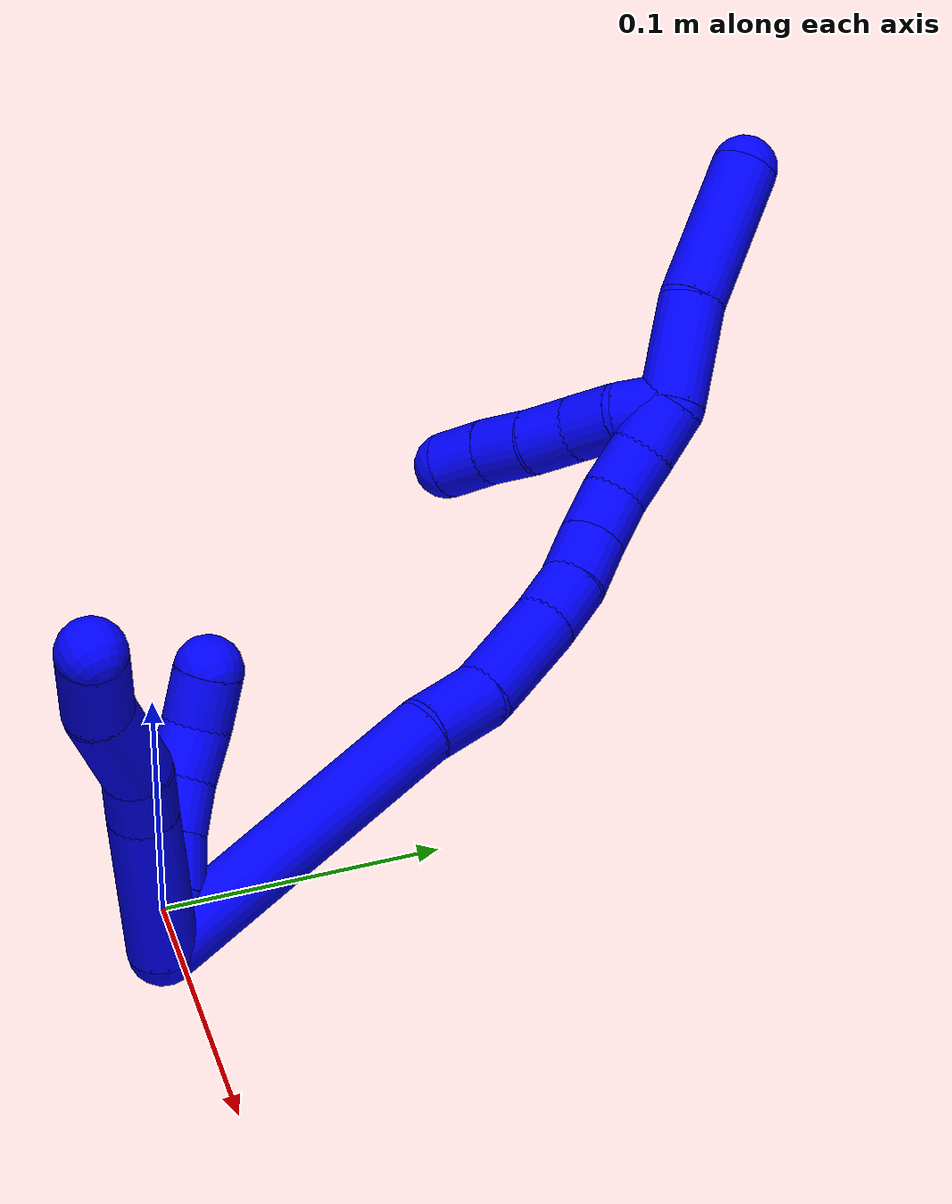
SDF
<sdf version="1.7">
 <world name="default">
  <model name="1">
   <static>0</static>
   <link name="1">
    <collision name="collision-cylinder-e_1_2_8">
     <pose>-0.010558 -0.025011 -0.01399 2.0808 -0.352967 -0.590428</pose>
     <geometry><cylinder><radius>0.0125</radius><length>0.061082</length></cylinder></geometry>
     <surface>
      <friction><ode><mu>1.16</mu><mu2>1.16</mu2><slip1>0</slip1><slip2>0</slip2></ode></friction>
      <contact><ode><kp>1e+06</kp><kd>1</kd><max_vel>0</max_vel><min_depth>0.001</min_depth></ode></contact>
     </surface>
    </collision>
    <visual name="visual-cylinder-e_1_2_8">
     <pose>-0.010558 -0.025011 -0.01399 2.0808 -0.352967 -0.590428</pose>
     <geometry><cylinder><radius>0.0125</radius><length>0.061082</length></cylinder></geometry>
     <material><ambient>0 0 1 1</ambient></material>
    </visual>
    <collision name="collision-cylinder-e_2_8_9">
     <pose>-0.024606 -0.058751 -0.031688 1.97246 -0.352715 -0.526142</pose>
     <geometry><cylinder><radius>0.0125</radius><length>0.020211</length></cylinder></geometry>
     <surface>
      <friction><ode><mu>1.16</mu><mu2>1.16</mu2><slip1>0</slip1><slip2>0</slip2></ode></friction>
      <contact><ode><kp>1e+06</kp><kd>1</kd><max_vel>0</max_vel><min_depth>0.001</min_depth></ode></contact>
     </surface>
    </collision>
    <visual name="visual-cylinder-e_2_8_9">
     <pose>-0.024606 -0.058751 -0.031688 1.97246 -0.352715 -0.526142</pose>
     <geometry><cylinder><radius>0.0125</radius><length>0.020211</length></cylinder></geometry>
     <material><ambient>0 0 1 1</ambient></material>
    </visual>
    <collision name="collision-cylinder-e_3_9_10">
     <pose>-0.028955 -0.085187 -0.041303 1.8928 -0.045964 -0.063777</pose>
     <geometry><cylinder><radius>0.0125</radius><length>0.037373</length></cylinder></geometry>
     <surface>
      <friction><ode><mu>1.16</mu><mu2>1.16</mu2><slip1>0</slip1><slip2>0</slip2></ode></friction>
      <contact><ode><kp>1e+06</kp><kd>1</kd><max_vel>0</max_vel><min_depth>0.001</min_depth></ode></contact>
     </surface>
    </collision>
    <visual name="visual-cylinder-e_3_9_10">
     <pose>-0.028955 -0.085187 -0.041303 1.8928 -0.045964 -0.063777</pose>
     <geometry><cylinder><radius>0.0125</radius><length>0.037373</length></cylinder></geometry>
     <material><ambient>0 0 1 1</ambient></material>
    </visual>
    <collision name="collision-cylinder-e_4_10_6">
     <pose>-0.034738 -0.117397 -0.050512 1.7946 -0.319737 -0.398772</pose>
     <geometry><cylinder><radius>0.0125</radius><length>0.031334</length></cylinder></geometry>
     <surface>
      <friction><ode><mu>1.16</mu><mu2>1.16</mu2><slip1>0</slip1><slip2>0</slip2></ode></friction>
      <contact><ode><kp>1e+06</kp><kd>1</kd><max_vel>0</max_vel><min_depth>0.001</min_depth></ode></contact>
     </surface>
    </collision>
    <visual name="visual-cylinder-e_4_10_6">
     <pose>-0.034738 -0.117397 -0.050512 1.7946 -0.319737 -0.398772</pose>
     <geometry><cylinder><radius>0.0125</radius><length>0.031334</length></cylinder></geometry>
     <material><ambient>0 0 1 1</ambient></material>
    </visual>
    <collision name="collision-cylinder-e_1_2_11">
     <pose>-0.005594 0.000137 -0.008288 -3.12511 -0.593708 3.08773</pose>
     <geometry><cylinder><radius>0.0125</radius><length>0.02</length></cylinder></geometry>
     <surface>
      <friction><ode><mu>1.16</mu><mu2>1.16</mu2><slip1>0</slip1><slip2>0</slip2></ode></friction>
      <contact><ode><kp>1e+06</kp><kd>1</kd><max_vel>0</max_vel><min_depth>0.001</min_depth></ode></contact>
     </surface>
    </collision>
    <visual name="visual-cylinder-e_1_2_11">
     <pose>-0.005594 0.000137 -0.008288 -3.12511 -0.593708 3.08773</pose>
     <geometry><cylinder><radius>0.0125</radius><length>0.02</length></cylinder></geometry>
     <material><ambient>0 0 1 1</ambient></material>
    </visual>
    <collision name="collision-cylinder-e_2_11_12">
     <pose>-0.016034 -0.00071 -0.025268 3.02895 -0.505769 -2.71196</pose>
     <geometry><cylinder><radius>0.0125</radius><length>0.02</length></cylinder></geometry>
     <surface>
      <friction><ode><mu>1.16</mu><mu2>1.16</mu2><slip1>0</slip1><slip2>0</slip2></ode></friction>
      <contact><ode><kp>1e+06</kp><kd>1</kd><max_vel>0</max_vel><min_depth>0.001</min_depth></ode></contact>
     </surface>
    </collision>
    <visual name="visual-cylinder-e_2_11_12">
     <pose>-0.016034 -0.00071 -0.025268 3.02895 -0.505769 -2.71196</pose>
     <geometry><cylinder><radius>0.0125</radius><length>0.02</length></cylinder></geometry>
     <material><ambient>0 0 1 1</ambient></material>
    </visual>
    <collision name="collision-cylinder-e_3_12_13">
     <pose>-0.026916 -0.002003 -0.041926 3.10282 -0.648195 -3.02628</pose>
     <geometry><cylinder><radius>0.0125</radius><length>0.02</length></cylinder></geometry>
     <surface>
      <friction><ode><mu>1.16</mu><mu2>1.16</mu2><slip1>0</slip1><slip2>0</slip2></ode></friction>
      <contact><ode><kp>1e+06</kp><kd>1</kd><max_vel>0</max_vel><min_depth>0.001</min_depth></ode></contact>
     </surface>
    </collision>
    <visual name="visual-cylinder-e_3_12_13">
     <pose>-0.026916 -0.002003 -0.041926 3.10282 -0.648195 -3.02628</pose>
     <geometry><cylinder><radius>0.0125</radius><length>0.02</length></cylinder></geometry>
     <material><ambient>0 0 1 1</ambient></material>
    </visual>
    <collision name="collision-cylinder-e_4_13_14">
     <pose>-0.040135 -0.00409 -0.05662 2.88318 -0.801165 -2.54619</pose>
     <geometry><cylinder><radius>0.0125</radius><length>0.02</length></cylinder></geometry>
     <surface>
      <friction><ode><mu>1.16</mu><mu2>1.16</mu2><slip1>0</slip1><slip2>0</slip2></ode></friction>
      <contact><ode><kp>1e+06</kp><kd>1</kd><max_vel>0</max_vel><min_depth>0.001</min_depth></ode></contact>
     </surface>
    </collision>
    <visual name="visual-cylinder-e_4_13_14">
     <pose>-0.040135 -0.00409 -0.05662 2.88318 -0.801165 -2.54619</pose>
     <geometry><cylinder><radius>0.0125</radius><length>0.02</length></cylinder></geometry>
     <material><ambient>0 0 1 1</ambient></material>
    </visual>
    <collision name="collision-cylinder-e_5_14_5">
     <pose>-0.053954 -0.010656 -0.069094 2.44695 -0.72576 -1.61851</pose>
     <geometry><cylinder><radius>0.0125</radius><length>0.02</length></cylinder></geometry>
     <surface>
      <friction><ode><mu>1.16</mu><mu2>1.16</mu2><slip1>0</slip1><slip2>0</slip2></ode></friction>
      <contact><ode><kp>1e+06</kp><kd>1</kd><max_vel>0</max_vel><min_depth>0.001</min_depth></ode></contact>
     </surface>
    </collision>
    <visual name="visual-cylinder-e_5_14_5">
     <pose>-0.053954 -0.010656 -0.069094 2.44695 -0.72576 -1.61851</pose>
     <geometry><cylinder><radius>0.0125</radius><length>0.02</length></cylinder></geometry>
     <material><ambient>0 0 1 1</ambient></material>
    </visual>
    <collision name="collision-cylinder-e_1_2_15">
     <pose>-0.056056 0.024057 -0.019562 -2.25351 -1.06555 1.78385</pose>
     <geometry><cylinder><radius>0.0125</radius><length>0.12812</length></cylinder></geometry>
     <surface>
      <friction><ode><mu>1.16</mu><mu2>1.16</mu2><slip1>0</slip1><slip2>0</slip2></ode></friction>
      <contact><ode><kp>1e+06</kp><kd>1</kd><max_vel>0</max_vel><min_depth>0.001</min_depth></ode></contact>
     </surface>
    </collision>
    <visual name="visual-cylinder-e_1_2_15">
     <pose>-0.056056 0.024057 -0.019562 -2.25351 -1.06555 1.78385</pose>
     <geometry><cylinder><radius>0.0125</radius><length>0.12812</length></cylinder></geometry>
     <material><ambient>0 0 1 1</ambient></material>
    </visual>
    <collision name="collision-cylinder-e_2_15_16">
     <pose>-0.123654 0.055934 -0.042285 -1.95489 -0.939712 1.29073</pose>
     <geometry><cylinder><radius>0.0125</radius><length>0.028592</length></cylinder></geometry>
     <surface>
      <friction><ode><mu>1.16</mu><mu2>1.16</mu2><slip1>0</slip1><slip2>0</slip2></ode></friction>
      <contact><ode><kp>1e+06</kp><kd>1</kd><max_vel>0</max_vel><min_depth>0.001</min_depth></ode></contact>
     </surface>
    </collision>
    <visual name="visual-cylinder-e_2_15_16">
     <pose>-0.123654 0.055934 -0.042285 -1.95489 -0.939712 1.29073</pose>
     <geometry><cylinder><radius>0.0125</radius><length>0.028592</length></cylinder></geometry>
     <material><ambient>0 0 1 1</ambient></material>
    </visual>
    <collision name="collision-cylinder-e_3_16_17">
     <pose>-0.150896 0.073434 -0.054911 -2.34499 -0.859172 1.65568</pose>
     <geometry><cylinder><radius>0.0125</radius><length>0.041462</length></cylinder></geometry>
     <surface>
      <friction><ode><mu>1.16</mu><mu2>1.16</mu2><slip1>0</slip1><slip2>0</slip2></ode></friction>
      <contact><ode><kp>1e+06</kp><kd>1</kd><max_vel>0</max_vel><min_depth>0.001</min_depth></ode></contact>
     </surface>
    </collision>
    <visual name="visual-cylinder-e_3_16_17">
     <pose>-0.150896 0.073434 -0.054911 -2.34499 -0.859172 1.65568</pose>
     <geometry><cylinder><radius>0.0125</radius><length>0.041462</length></cylinder></geometry>
     <material><ambient>0 0 1 1</ambient></material>
    </visual>
    <collision name="collision-cylinder-e_4_17_18">
     <pose>-0.174623 0.087275 -0.069814 -2.4885 -0.864609 1.87524</pose>
     <geometry><cylinder><radius>0.0125</radius><length>0.021101</length></cylinder></geometry>
     <surface>
      <friction><ode><mu>1.16</mu><mu2>1.16</mu2><slip1>0</slip1><slip2>0</slip2></ode></friction>
      <contact><ode><kp>1e+06</kp><kd>1</kd><max_vel>0</max_vel><min_depth>0.001</min_depth></ode></contact>
     </surface>
    </collision>
    <visual name="visual-cylinder-e_4_17_18">
     <pose>-0.174623 0.087275 -0.069814 -2.4885 -0.864609 1.87524</pose>
     <geometry><cylinder><radius>0.0125</radius><length>0.021101</length></cylinder></geometry>
     <material><ambient>0 0 1 1</ambient></material>
    </visual>
    <collision name="collision-cylinder-e_5_18_19">
     <pose>-0.189574 0.094857 -0.082002 -2.67247 -0.740994 2.03858</pose>
     <geometry><cylinder><radius>0.0125</radius><length>0.020516</length></cylinder></geometry>
     <surface>
      <friction><ode><mu>1.16</mu><mu2>1.16</mu2><slip1>0</slip1><slip2>0</slip2></ode></friction>
      <contact><ode><kp>1e+06</kp><kd>1</kd><max_vel>0</max_vel><min_depth>0.001</min_depth></ode></contact>
     </surface>
    </collision>
    <visual name="visual-cylinder-e_5_18_19">
     <pose>-0.189574 0.094857 -0.082002 -2.67247 -0.740994 2.03858</pose>
     <geometry><cylinder><radius>0.0125</radius><length>0.020516</length></cylinder></geometry>
     <material><ambient>0 0 1 1</ambient></material>
    </visual>
    <collision name="collision-cylinder-e_6_19_20">
     <pose>-0.204034 0.100605 -0.095008 -2.78553 -0.845918 2.38102</pose>
     <geometry><cylinder><radius>0.0125</radius><length>0.020132</length></cylinder></geometry>
     <surface>
      <friction><ode><mu>1.16</mu><mu2>1.16</mu2><slip1>0</slip1><slip2>0</slip2></ode></friction>
      <contact><ode><kp>1e+06</kp><kd>1</kd><max_vel>0</max_vel><min_depth>0.001</min_depth></ode></contact>
     </surface>
    </collision>
    <visual name="visual-cylinder-e_6_19_20">
     <pose>-0.204034 0.100605 -0.095008 -2.78553 -0.845918 2.38102</pose>
     <geometry><cylinder><radius>0.0125</radius><length>0.020132</length></cylinder></geometry>
     <material><ambient>0 0 1 1</ambient></material>
    </visual>
    <collision name="collision-cylinder-e_7_20_21">
     <pose>-0.220286 0.103395 -0.106185 -3.04775 -1.05492 2.98072</pose>
     <geometry><cylinder><radius>0.0125</radius><length>0.020042</length></cylinder></geometry>
     <surface>
      <friction><ode><mu>1.16</mu><mu2>1.16</mu2><slip1>0</slip1><slip2>0</slip2></ode></friction>
      <contact><ode><kp>1e+06</kp><kd>1</kd><max_vel>0</max_vel><min_depth>0.001</min_depth></ode></contact>
     </surface>
    </collision>
    <visual name="visual-cylinder-e_7_20_21">
     <pose>-0.220286 0.103395 -0.106185 -3.04775 -1.05492 2.98072</pose>
     <geometry><cylinder><radius>0.0125</radius><length>0.020042</length></cylinder></geometry>
     <material><ambient>0 0 1 1</ambient></material>
    </visual>
    <collision name="collision-cylinder-e_8_21_1">
     <pose>-0.237764 0.10362 -0.115959 3.09257 -1.06448 -3.05838</pose>
     <geometry><cylinder><radius>0.0125</radius><length>0.020036</length></cylinder></geometry>
     <surface>
      <friction><ode><mu>1.16</mu><mu2>1.16</mu2><slip1>0</slip1><slip2>0</slip2></ode></friction>
      <contact><ode><kp>1e+06</kp><kd>1</kd><max_vel>0</max_vel><min_depth>0.001</min_depth></ode></contact>
     </surface>
    </collision>
    <visual name="visual-cylinder-e_8_21_1">
     <pose>-0.237764 0.10362 -0.115959 3.09257 -1.06448 -3.05838</pose>
     <geometry><cylinder><radius>0.0125</radius><length>0.020036</length></cylinder></geometry>
     <material><ambient>0 0 1 1</ambient></material>
    </visual>
    <collision name="collision-cylinder-e_1_1_22">
     <pose>-0.237713 0.105385 -0.125094 -2.70408 1.07835 -2.43007</pose>
     <geometry><cylinder><radius>0.0125</radius><length>0.02</length></cylinder></geometry>
     <surface>
      <friction><ode><mu>1.16</mu><mu2>1.16</mu2><slip1>0</slip1><slip2>0</slip2></ode></friction>
      <contact><ode><kp>1e+06</kp><kd>1</kd><max_vel>0</max_vel><min_depth>0.001</min_depth></ode></contact>
     </surface>
    </collision>
    <visual name="visual-cylinder-e_1_1_22">
     <pose>-0.237713 0.105385 -0.125094 -2.70408 1.07835 -2.43007</pose>
     <geometry><cylinder><radius>0.0125</radius><length>0.02</length></cylinder></geometry>
     <material><ambient>0 0 1 1</ambient></material>
    </visual>
    <collision name="collision-cylinder-e_2_22_23">
     <pose>-0.220748 0.111715 -0.133224 -2.29763 0.953261 -1.71019</pose>
     <geometry><cylinder><radius>0.0125</radius><length>0.02</length></cylinder></geometry>
     <surface>
      <friction><ode><mu>1.16</mu><mu2>1.16</mu2><slip1>0</slip1><slip2>0</slip2></ode></friction>
      <contact><ode><kp>1e+06</kp><kd>1</kd><max_vel>0</max_vel><min_depth>0.001</min_depth></ode></contact>
     </surface>
    </collision>
    <visual name="visual-cylinder-e_2_22_23">
     <pose>-0.220748 0.111715 -0.133224 -2.29763 0.953261 -1.71019</pose>
     <geometry><cylinder><radius>0.0125</radius><length>0.02</length></cylinder></geometry>
     <material><ambient>0 0 1 1</ambient></material>
    </visual>
    <collision name="collision-cylinder-e_3_23_24">
     <pose>-0.204031 0.119733 -0.140681 -2.34493 1.0283 -1.86092</pose>
     <geometry><cylinder><radius>0.0125</radius><length>0.02</length></cylinder></geometry>
     <surface>
      <friction><ode><mu>1.16</mu><mu2>1.16</mu2><slip1>0</slip1><slip2>0</slip2></ode></friction>
      <contact><ode><kp>1e+06</kp><kd>1</kd><max_vel>0</max_vel><min_depth>0.001</min_depth></ode></contact>
     </surface>
    </collision>
    <visual name="visual-cylinder-e_3_23_24">
     <pose>-0.204031 0.119733 -0.140681 -2.34493 1.0283 -1.86092</pose>
     <geometry><cylinder><radius>0.0125</radius><length>0.02</length></cylinder></geometry>
     <material><ambient>0 0 1 1</ambient></material>
    </visual>
    <collision name="collision-cylinder-e_4_24_25">
     <pose>-0.187602 0.127732 -0.148716 -2.36973 0.905106 -1.74937</pose>
     <geometry><cylinder><radius>0.0125</radius><length>0.02</length></cylinder></geometry>
     <surface>
      <friction><ode><mu>1.16</mu><mu2>1.16</mu2><slip1>0</slip1><slip2>0</slip2></ode></friction>
      <contact><ode><kp>1e+06</kp><kd>1</kd><max_vel>0</max_vel><min_depth>0.001</min_depth></ode></contact>
     </surface>
    </collision>
    <visual name="visual-cylinder-e_4_24_25">
     <pose>-0.187602 0.127732 -0.148716 -2.36973 0.905106 -1.74937</pose>
     <geometry><cylinder><radius>0.0125</radius><length>0.02</length></cylinder></geometry>
     <material><ambient>0 0 1 1</ambient></material>
    </visual>
    <collision name="collision-cylinder-e_5_25_4">
     <pose>-0.171449 0.136285 -0.156788 -2.28043 0.976923 -1.71606</pose>
     <geometry><cylinder><radius>0.0125</radius><length>0.02</length></cylinder></geometry>
     <surface>
      <friction><ode><mu>1.16</mu><mu2>1.16</mu2><slip1>0</slip1><slip2>0</slip2></ode></friction>
      <contact><ode><kp>1e+06</kp><kd>1</kd><max_vel>0</max_vel><min_depth>0.001</min_depth></ode></contact>
     </surface>
    </collision>
    <visual name="visual-cylinder-e_5_25_4">
     <pose>-0.171449 0.136285 -0.156788 -2.28043 0.976923 -1.71606</pose>
     <geometry><cylinder><radius>0.0125</radius><length>0.02</length></cylinder></geometry>
     <material><ambient>0 0 1 1</ambient></material>
    </visual>
    <collision name="collision-cylinder-e_1_1_26">
     <pose>-0.259589 0.103577 -0.136925 -3.12949 -0.68122 3.10746</pose>
     <geometry><cylinder><radius>0.0125</radius><length>0.04149</length></cylinder></geometry>
     <surface>
      <friction><ode><mu>1.16</mu><mu2>1.16</mu2><slip1>0</slip1><slip2>0</slip2></ode></friction>
      <contact><ode><kp>1e+06</kp><kd>1</kd><max_vel>0</max_vel><min_depth>0.001</min_depth></ode></contact>
     </surface>
    </collision>
    <visual name="visual-cylinder-e_1_1_26">
     <pose>-0.259589 0.103577 -0.136925 -3.12949 -0.68122 3.10746</pose>
     <geometry><cylinder><radius>0.0125</radius><length>0.04149</length></cylinder></geometry>
     <material><ambient>0 0 1 1</ambient></material>
    </visual>
    <collision name="collision-cylinder-e_2_26_3">
     <pose>-0.293929 0.107722 -0.172726 -2.94354 -0.814324 2.68874</pose>
     <geometry><cylinder><radius>0.0125</radius><length>0.05851</length></cylinder></geometry>
     <surface>
      <friction><ode><mu>1.16</mu><mu2>1.16</mu2><slip1>0</slip1><slip2>0</slip2></ode></friction>
      <contact><ode><kp>1e+06</kp><kd>1</kd><max_vel>0</max_vel><min_depth>0.001</min_depth></ode></contact>
     </surface>
    </collision>
    <visual name="visual-cylinder-e_2_26_3">
     <pose>-0.293929 0.107722 -0.172726 -2.94354 -0.814324 2.68874</pose>
     <geometry><cylinder><radius>0.0125</radius><length>0.05851</length></cylinder></geometry>
     <material><ambient>0 0 1 1</ambient></material>
    </visual>
    <collision name="collision-sphere-3">
     <pose>-0.315205 0.111673 -0.192413 0 -0 0</pose>
     <geometry><sphere><radius>0.0125</radius></sphere></geometry>
     <surface>
      <friction><ode><mu>1.16</mu><mu2>1.16</mu2><slip1>0</slip1><slip2>0</slip2></ode></friction>
      <contact><ode><kp>1e+06</kp><kd>1</kd><max_vel>0</max_vel><min_depth>0.001</min_depth></ode></contact>
     </surface>
    </collision>
    <visual name="visual-sphere-3">
     <pose>-0.315205 0.111673 -0.192413 0 -0 0</pose>
     <geometry><sphere><radius>0.0125</radius></sphere></geometry>
     <material><ambient>0 0 1 1</ambient></material>
    </visual>
    <collision name="collision-sphere-26">
     <pose>-0.272653 0.103772 -0.153039 0 -0 0</pose>
     <geometry><sphere><radius>0.0125</radius></sphere></geometry>
     <surface>
      <friction><ode><mu>1.16</mu><mu2>1.16</mu2><slip1>0</slip1><slip2>0</slip2></ode></friction>
      <contact><ode><kp>1e+06</kp><kd>1</kd><max_vel>0</max_vel><min_depth>0.001</min_depth></ode></contact>
     </surface>
    </collision>
    <visual name="visual-sphere-26">
     <pose>-0.272653 0.103772 -0.153039 0 -0 0</pose>
     <geometry><sphere><radius>0.0125</radius></sphere></geometry>
     <material><ambient>0 0 1 1</ambient></material>
    </visual>
    <collision name="collision-sphere-4">
     <pose>-0.163161 0.14053 -0.160434 0 -0 0</pose>
     <geometry><sphere><radius>0.0125</radius></sphere></geometry>
     <surface>
      <friction><ode><mu>1.16</mu><mu2>1.16</mu2><slip1>0</slip1><slip2>0</slip2></ode></friction>
      <contact><ode><kp>1e+06</kp><kd>1</kd><max_vel>0</max_vel><min_depth>0.001</min_depth></ode></contact>
     </surface>
    </collision>
    <visual name="visual-sphere-4">
     <pose>-0.163161 0.14053 -0.160434 0 -0 0</pose>
     <geometry><sphere><radius>0.0125</radius></sphere></geometry>
     <material><ambient>0 0 1 1</ambient></material>
    </visual>
    <collision name="collision-sphere-25">
     <pose>-0.179737 0.13204 -0.153142 0 -0 0</pose>
     <geometry><sphere><radius>0.0125</radius></sphere></geometry>
     <surface>
      <friction><ode><mu>1.16</mu><mu2>1.16</mu2><slip1>0</slip1><slip2>0</slip2></ode></friction>
      <contact><ode><kp>1e+06</kp><kd>1</kd><max_vel>0</max_vel><min_depth>0.001</min_depth></ode></contact>
     </surface>
    </collision>
    <visual name="visual-sphere-25">
     <pose>-0.179737 0.13204 -0.153142 0 -0 0</pose>
     <geometry><sphere><radius>0.0125</radius></sphere></geometry>
     <material><ambient>0 0 1 1</ambient></material>
    </visual>
    <collision name="collision-sphere-24">
     <pose>-0.195467 0.123425 -0.14429 0 -0 0</pose>
     <geometry><sphere><radius>0.0125</radius></sphere></geometry>
     <surface>
      <friction><ode><mu>1.16</mu><mu2>1.16</mu2><slip1>0</slip1><slip2>0</slip2></ode></friction>
      <contact><ode><kp>1e+06</kp><kd>1</kd><max_vel>0</max_vel><min_depth>0.001</min_depth></ode></contact>
     </surface>
    </collision>
    <visual name="visual-sphere-24">
     <pose>-0.195467 0.123425 -0.14429 0 -0 0</pose>
     <geometry><sphere><radius>0.0125</radius></sphere></geometry>
     <material><ambient>0 0 1 1</ambient></material>
    </visual>
    <collision name="collision-sphere-23">
     <pose>-0.212595 0.116042 -0.137072 0 -0 0</pose>
     <geometry><sphere><radius>0.0125</radius></sphere></geometry>
     <surface>
      <friction><ode><mu>1.16</mu><mu2>1.16</mu2><slip1>0</slip1><slip2>0</slip2></ode></friction>
      <contact><ode><kp>1e+06</kp><kd>1</kd><max_vel>0</max_vel><min_depth>0.001</min_depth></ode></contact>
     </surface>
    </collision>
    <visual name="visual-sphere-23">
     <pose>-0.212595 0.116042 -0.137072 0 -0 0</pose>
     <geometry><sphere><radius>0.0125</radius></sphere></geometry>
     <material><ambient>0 0 1 1</ambient></material>
    </visual>
    <collision name="collision-sphere-22">
     <pose>-0.228901 0.107388 -0.129377 0 -0 0</pose>
     <geometry><sphere><radius>0.0125</radius></sphere></geometry>
     <surface>
      <friction><ode><mu>1.16</mu><mu2>1.16</mu2><slip1>0</slip1><slip2>0</slip2></ode></friction>
      <contact><ode><kp>1e+06</kp><kd>1</kd><max_vel>0</max_vel><min_depth>0.001</min_depth></ode></contact>
     </surface>
    </collision>
    <visual name="visual-sphere-22">
     <pose>-0.228901 0.107388 -0.129377 0 -0 0</pose>
     <geometry><sphere><radius>0.0125</radius></sphere></geometry>
     <material><ambient>0 0 1 1</ambient></material>
    </visual>
    <collision name="collision-sphere-1">
     <pose>-0.246525 0.103382 -0.120812 0 -0 0</pose>
     <geometry><sphere><radius>0.0125</radius></sphere></geometry>
     <surface>
      <friction><ode><mu>1.16</mu><mu2>1.16</mu2><slip1>0</slip1><slip2>0</slip2></ode></friction>
      <contact><ode><kp>1e+06</kp><kd>1</kd><max_vel>0</max_vel><min_depth>0.001</min_depth></ode></contact>
     </surface>
    </collision>
    <visual name="visual-sphere-1">
     <pose>-0.246525 0.103382 -0.120812 0 -0 0</pose>
     <geometry><sphere><radius>0.0125</radius></sphere></geometry>
     <material><ambient>0 0 1 1</ambient></material>
    </visual>
    <collision name="collision-sphere-21">
     <pose>-0.229003 0.103858 -0.111107 0 -0 0</pose>
     <geometry><sphere><radius>0.0125</radius></sphere></geometry>
     <surface>
      <friction><ode><mu>1.16</mu><mu2>1.16</mu2><slip1>0</slip1><slip2>0</slip2></ode></friction>
      <contact><ode><kp>1e+06</kp><kd>1</kd><max_vel>0</max_vel><min_depth>0.001</min_depth></ode></contact>
     </surface>
    </collision>
    <visual name="visual-sphere-21">
     <pose>-0.229003 0.103858 -0.111107 0 -0 0</pose>
     <geometry><sphere><radius>0.0125</radius></sphere></geometry>
     <material><ambient>0 0 1 1</ambient></material>
    </visual>
    <collision name="collision-sphere-11">
     <pose>-0.011189 0.000273 -0.016575 0 -0 0</pose>
     <geometry><sphere><radius>0.0125</radius></sphere></geometry>
     <surface>
      <friction><ode><mu>1.16</mu><mu2>1.16</mu2><slip1>0</slip1><slip2>0</slip2></ode></friction>
      <contact><ode><kp>1e+06</kp><kd>1</kd><max_vel>0</max_vel><min_depth>0.001</min_depth></ode></contact>
     </surface>
    </collision>
    <visual name="visual-sphere-11">
     <pose>-0.011189 0.000273 -0.016575 0 -0 0</pose>
     <geometry><sphere><radius>0.0125</radius></sphere></geometry>
     <material><ambient>0 0 1 1</ambient></material>
    </visual>
    <collision name="collision-sphere-6">
     <pose>-0.039663 -0.131898 -0.053812 0 -0 0</pose>
     <geometry><sphere><radius>0.0125</radius></sphere></geometry>
     <surface>
      <friction><ode><mu>1.16</mu><mu2>1.16</mu2><slip1>0</slip1><slip2>0</slip2></ode></friction>
      <contact><ode><kp>1e+06</kp><kd>1</kd><max_vel>0</max_vel><min_depth>0.001</min_depth></ode></contact>
     </surface>
    </collision>
    <visual name="visual-sphere-6">
     <pose>-0.039663 -0.131898 -0.053812 0 -0 0</pose>
     <geometry><sphere><radius>0.0125</radius></sphere></geometry>
     <material><ambient>0 0 1 1</ambient></material>
    </visual>
    <collision name="collision-sphere-10">
     <pose>-0.029814 -0.102895 -0.047211 0 -0 0</pose>
     <geometry><sphere><radius>0.0125</radius></sphere></geometry>
     <surface>
      <friction><ode><mu>1.16</mu><mu2>1.16</mu2><slip1>0</slip1><slip2>0</slip2></ode></friction>
      <contact><ode><kp>1e+06</kp><kd>1</kd><max_vel>0</max_vel><min_depth>0.001</min_depth></ode></contact>
     </surface>
    </collision>
    <visual name="visual-sphere-10">
     <pose>-0.029814 -0.102895 -0.047211 0 -0 0</pose>
     <geometry><sphere><radius>0.0125</radius></sphere></geometry>
     <material><ambient>0 0 1 1</ambient></material>
    </visual>
    <collision name="collision-sphere-9">
     <pose>-0.028097 -0.06748 -0.035396 0 -0 0</pose>
     <geometry><sphere><radius>0.0125</radius></sphere></geometry>
     <surface>
      <friction><ode><mu>1.16</mu><mu2>1.16</mu2><slip1>0</slip1><slip2>0</slip2></ode></friction>
      <contact><ode><kp>1e+06</kp><kd>1</kd><max_vel>0</max_vel><min_depth>0.001</min_depth></ode></contact>
     </surface>
    </collision>
    <visual name="visual-sphere-9">
     <pose>-0.028097 -0.06748 -0.035396 0 -0 0</pose>
     <geometry><sphere><radius>0.0125</radius></sphere></geometry>
     <material><ambient>0 0 1 1</ambient></material>
    </visual>
    <collision name="collision-sphere-2">
     <geometry><sphere><radius>0.0125</radius></sphere></geometry>
     <surface>
      <friction><ode><mu>1.16</mu><mu2>1.16</mu2><slip1>0</slip1><slip2>0</slip2></ode></friction>
      <contact><ode><kp>1e+06</kp><kd>1</kd><max_vel>0</max_vel><min_depth>0.001</min_depth></ode></contact>
     </surface>
    </collision>
    <visual name="visual-sphere-2">
     <geometry><sphere><radius>0.0125</radius></sphere></geometry>
     <material><ambient>0 0 1 1</ambient></material>
    </visual>
    <collision name="collision-sphere-19">
     <pose>-0.196499 0.098278 -0.088753 0 -0 0</pose>
     <geometry><sphere><radius>0.0125</radius></sphere></geometry>
     <surface>
      <friction><ode><mu>1.16</mu><mu2>1.16</mu2><slip1>0</slip1><slip2>0</slip2></ode></friction>
      <contact><ode><kp>1e+06</kp><kd>1</kd><max_vel>0</max_vel><min_depth>0.001</min_depth></ode></contact>
     </surface>
    </collision>
    <visual name="visual-sphere-19">
     <pose>-0.196499 0.098278 -0.088753 0 -0 0</pose>
     <geometry><sphere><radius>0.0125</radius></sphere></geometry>
     <material><ambient>0 0 1 1</ambient></material>
    </visual>
    <collision name="collision-sphere-8">
     <pose>-0.021115 -0.050022 -0.027981 0 -0 0</pose>
     <geometry><sphere><radius>0.0125</radius></sphere></geometry>
     <surface>
      <friction><ode><mu>1.16</mu><mu2>1.16</mu2><slip1>0</slip1><slip2>0</slip2></ode></friction>
      <contact><ode><kp>1e+06</kp><kd>1</kd><max_vel>0</max_vel><min_depth>0.001</min_depth></ode></contact>
     </surface>
    </collision>
    <visual name="visual-sphere-8">
     <pose>-0.021115 -0.050022 -0.027981 0 -0 0</pose>
     <geometry><sphere><radius>0.0125</radius></sphere></geometry>
     <material><ambient>0 0 1 1</ambient></material>
    </visual>
    <collision name="collision-sphere-12">
     <pose>-0.020878 -0.001694 -0.03396 0 -0 0</pose>
     <geometry><sphere><radius>0.0125</radius></sphere></geometry>
     <surface>
      <friction><ode><mu>1.16</mu><mu2>1.16</mu2><slip1>0</slip1><slip2>0</slip2></ode></friction>
      <contact><ode><kp>1e+06</kp><kd>1</kd><max_vel>0</max_vel><min_depth>0.001</min_depth></ode></contact>
     </surface>
    </collision>
    <visual name="visual-sphere-12">
     <pose>-0.020878 -0.001694 -0.03396 0 -0 0</pose>
     <geometry><sphere><radius>0.0125</radius></sphere></geometry>
     <material><ambient>0 0 1 1</ambient></material>
    </visual>
    <collision name="collision-sphere-13">
     <pose>-0.032953 -0.002312 -0.049892 0 -0 0</pose>
     <geometry><sphere><radius>0.0125</radius></sphere></geometry>
     <surface>
      <friction><ode><mu>1.16</mu><mu2>1.16</mu2><slip1>0</slip1><slip2>0</slip2></ode></friction>
      <contact><ode><kp>1e+06</kp><kd>1</kd><max_vel>0</max_vel><min_depth>0.001</min_depth></ode></contact>
     </surface>
    </collision>
    <visual name="visual-sphere-13">
     <pose>-0.032953 -0.002312 -0.049892 0 -0 0</pose>
     <geometry><sphere><radius>0.0125</radius></sphere></geometry>
     <material><ambient>0 0 1 1</ambient></material>
    </visual>
    <collision name="collision-sphere-14">
     <pose>-0.047317 -0.005868 -0.063347 0 -0 0</pose>
     <geometry><sphere><radius>0.0125</radius></sphere></geometry>
     <surface>
      <friction><ode><mu>1.16</mu><mu2>1.16</mu2><slip1>0</slip1><slip2>0</slip2></ode></friction>
      <contact><ode><kp>1e+06</kp><kd>1</kd><max_vel>0</max_vel><min_depth>0.001</min_depth></ode></contact>
     </surface>
    </collision>
    <visual name="visual-sphere-14">
     <pose>-0.047317 -0.005868 -0.063347 0 -0 0</pose>
     <geometry><sphere><radius>0.0125</radius></sphere></geometry>
     <material><ambient>0 0 1 1</ambient></material>
    </visual>
    <collision name="collision-sphere-5">
     <pose>-0.060591 -0.015444 -0.074841 0 -0 0</pose>
     <geometry><sphere><radius>0.0125</radius></sphere></geometry>
     <surface>
      <friction><ode><mu>1.16</mu><mu2>1.16</mu2><slip1>0</slip1><slip2>0</slip2></ode></friction>
      <contact><ode><kp>1e+06</kp><kd>1</kd><max_vel>0</max_vel><min_depth>0.001</min_depth></ode></contact>
     </surface>
    </collision>
    <visual name="visual-sphere-5">
     <pose>-0.060591 -0.015444 -0.074841 0 -0 0</pose>
     <geometry><sphere><radius>0.0125</radius></sphere></geometry>
     <material><ambient>0 0 1 1</ambient></material>
    </visual>
    <collision name="collision-sphere-15">
     <pose>-0.112112 0.048114 -0.039124 0 -0 0</pose>
     <geometry><sphere><radius>0.0125</radius></sphere></geometry>
     <surface>
      <friction><ode><mu>1.16</mu><mu2>1.16</mu2><slip1>0</slip1><slip2>0</slip2></ode></friction>
      <contact><ode><kp>1e+06</kp><kd>1</kd><max_vel>0</max_vel><min_depth>0.001</min_depth></ode></contact>
     </surface>
    </collision>
    <visual name="visual-sphere-15">
     <pose>-0.112112 0.048114 -0.039124 0 -0 0</pose>
     <geometry><sphere><radius>0.0125</radius></sphere></geometry>
     <material><ambient>0 0 1 1</ambient></material>
    </visual>
    <collision name="collision-sphere-16">
     <pose>-0.135196 0.063754 -0.045445 0 -0 0</pose>
     <geometry><sphere><radius>0.0125</radius></sphere></geometry>
     <surface>
      <friction><ode><mu>1.16</mu><mu2>1.16</mu2><slip1>0</slip1><slip2>0</slip2></ode></friction>
      <contact><ode><kp>1e+06</kp><kd>1</kd><max_vel>0</max_vel><min_depth>0.001</min_depth></ode></contact>
     </surface>
    </collision>
    <visual name="visual-sphere-16">
     <pose>-0.135196 0.063754 -0.045445 0 -0 0</pose>
     <geometry><sphere><radius>0.0125</radius></sphere></geometry>
     <material><ambient>0 0 1 1</ambient></material>
    </visual>
    <collision name="collision-sphere-17">
     <pose>-0.166596 0.083114 -0.064376 0 -0 0</pose>
     <geometry><sphere><radius>0.0125</radius></sphere></geometry>
     <surface>
      <friction><ode><mu>1.16</mu><mu2>1.16</mu2><slip1>0</slip1><slip2>0</slip2></ode></friction>
      <contact><ode><kp>1e+06</kp><kd>1</kd><max_vel>0</max_vel><min_depth>0.001</min_depth></ode></contact>
     </surface>
    </collision>
    <visual name="visual-sphere-17">
     <pose>-0.166596 0.083114 -0.064376 0 -0 0</pose>
     <geometry><sphere><radius>0.0125</radius></sphere></geometry>
     <material><ambient>0 0 1 1</ambient></material>
    </visual>
    <collision name="collision-sphere-18">
     <pose>-0.18265 0.091435 -0.075251 0 -0 0</pose>
     <geometry><sphere><radius>0.0125</radius></sphere></geometry>
     <surface>
      <friction><ode><mu>1.16</mu><mu2>1.16</mu2><slip1>0</slip1><slip2>0</slip2></ode></friction>
      <contact><ode><kp>1e+06</kp><kd>1</kd><max_vel>0</max_vel><min_depth>0.001</min_depth></ode></contact>
     </surface>
    </collision>
    <visual name="visual-sphere-18">
     <pose>-0.18265 0.091435 -0.075251 0 -0 0</pose>
     <geometry><sphere><radius>0.0125</radius></sphere></geometry>
     <material><ambient>0 0 1 1</ambient></material>
    </visual>
    <collision name="collision-sphere-20">
     <pose>-0.211569 0.102931 -0.101264 0 -0 0</pose>
     <geometry><sphere><radius>0.0125</radius></sphere></geometry>
     <surface>
      <friction><ode><mu>1.16</mu><mu2>1.16</mu2><slip1>0</slip1><slip2>0</slip2></ode></friction>
      <contact><ode><kp>1e+06</kp><kd>1</kd><max_vel>0</max_vel><min_depth>0.001</min_depth></ode></contact>
     </surface>
    </collision>
    <visual name="visual-sphere-20">
     <pose>-0.211569 0.102931 -0.101264 0 -0 0</pose>
     <geometry><sphere><radius>0.0125</radius></sphere></geometry>
     <material><ambient>0 0 1 1</ambient></material>
    </visual>
    <inertial>
     <pose>-0.123198 0.040508 -0.072046 0 -0 0</pose>
     <mass>0.75</mass>
     <inertia>
      <ixx>3.8e-05</ixx>
      <ixy>0</ixy>
      <ixz>0</ixz>
      <iyy>0.000267</iyy>
      <iyz>0</iyz>
      <izz>0.000119</izz>
     </inertia>
    </inertial>
   </link>
   <pose>0.02937 -0.007349 0.011412 -1.96187 0.399153 -1.51611</pose>
  </model>
 </world>
</sdf>
